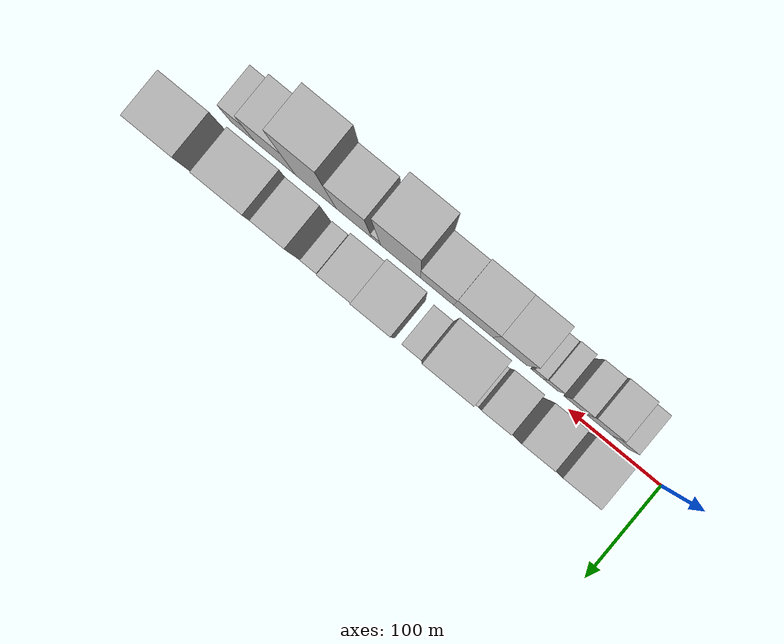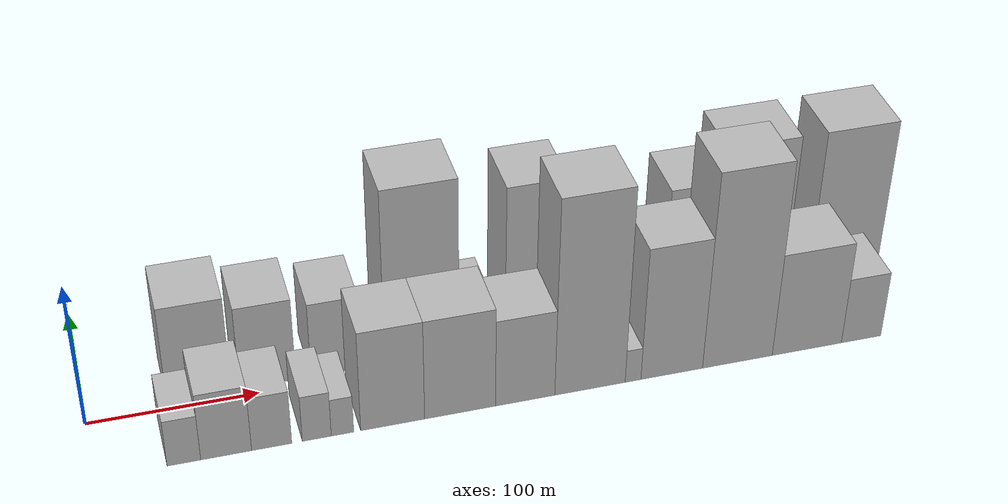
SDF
<sdf version="1.6">
 <world name="default">
  <scene>
   <sky><clouds><speed>12</speed></clouds></sky>
   <ambient>0.4 0.4 0.4 1</ambient>
   <background>0.7 0.7 0.7 1</background>
   <shadows>1</shadows>
  </scene>
  <gravity>0 0 -9.8066</gravity>
  <magnetic_field>6e-06 2.3e-05 -4.2e-05</magnetic_field>
  <physics default="0" name="default_physics" type="ode">
   <ode>
    <solver>
     <type>quick</type>
     <iters>10</iters>
     <sor>1.0</sor>
     <use_dynamic_moi_rescaling>0</use_dynamic_moi_rescaling>
    </solver>
    <constraints>
     <cfm>0</cfm>
     <erp>0.2</erp>
     <contact_max_correcting_vel>100</contact_max_correcting_vel>
     <contact_surface_layer>0.001</contact_surface_layer>
    </constraints>
   </ode>
   <max_step_size>0.004</max_step_size>
   <real_time_factor>1</real_time_factor>
   <real_time_update_rate>250</real_time_update_rate>
  </physics>
  <light name="sun" type="directional">
   <pose>0 0 10 0 0 0</pose>
   <diffuse>0.8 0.8 0.8 1</diffuse>
   <specular>0.2 0.2 0.2 1</specular>
   <attenuation>
    <range>1000</range>
    <constant>0.9</constant>
    <linear>0.01</linear>
    <quadratic>0.001</quadratic>
   </attenuation>
   <direction>-0.5 0.1 -0.9</direction>
  </light>
  <model name="building_1">
   <static>1</static>
   <pose>65.7065 26.0000 0 0.000000 0.000000 1.570796</pose>
   <link name="link">
    <pose>0 0 34.50 0 0 0</pose>
    <collision name="collision"><geometry><box><size>40.0000 37.4130 69.0000</size></box></geometry></collision>
    <visual name="visual">
     <cast_shadows>0</cast_shadows>
     <geometry><box><size>40.0000 37.4130 69.0000</size></box></geometry>
     <material>
      <script>
       <uri>model://HANNAS_wall/materials/scripts</uri>
       <uri>model://HANNAS_wall/materials/textures</uri>
       <name>vrc/HANNAS_wall</name>
      </script>
     </material>
    </visual>
   </link>
  </model>
  <model name="building_2">
   <static>1</static>
   <pose>105.9362 26.0000 0 0.000000 0.000000 1.570796</pose>
   <link name="link">
    <pose>0 0 30.00 0 0 0</pose>
    <collision name="collision"><geometry><box><size>40.0000 33.0465 60.0000</size></box></geometry></collision>
    <visual name="visual">
     <cast_shadows>0</cast_shadows>
     <geometry><box><size>40.0000 33.0465 60.0000</size></box></geometry>
     <material>
      <script>
       <uri>model://HANNAS_wall/materials/scripts</uri>
       <uri>model://HANNAS_wall/materials/textures</uri>
       <name>vrc/HANNAS_wall</name>
      </script>
     </material>
    </visual>
   </link>
  </model>
  <model name="building_3">
   <static>1</static>
   <pose>146.3972 26.0000 0 0.000000 0.000000 1.570796</pose>
   <link name="link">
    <pose>0 0 27.00 0 0 0</pose>
    <collision name="collision"><geometry><box><size>40.0000 29.8755 54.0000</size></box></geometry></collision>
    <visual name="visual">
     <cast_shadows>0</cast_shadows>
     <geometry><box><size>40.0000 29.8755 54.0000</size></box></geometry>
     <material>
      <script>
       <uri>model://HANNAS_wall/materials/scripts</uri>
       <uri>model://HANNAS_wall/materials/textures</uri>
       <name>vrc/HANNAS_wall</name>
      </script>
     </material>
    </visual>
   </link>
  </model>
  <model name="building_4">
   <static>1</static>
   <pose>166.8836 26.0000 0 0.000000 0.000000 1.570796</pose>
   <link name="link">
    <pose>0 0 12.00 0 0 0</pose>
    <collision name="collision"><geometry><box><size>40.0000 11.0972 24.0000</size></box></geometry></collision>
    <visual name="visual">
     <cast_shadows>0</cast_shadows>
     <geometry><box><size>40.0000 11.0972 24.0000</size></box></geometry>
     <material>
      <script>
       <uri>model://HANNAS_wall/materials/scripts</uri>
       <uri>model://HANNAS_wall/materials/textures</uri>
       <name>vrc/HANNAS_wall</name>
      </script>
     </material>
    </visual>
   </link>
  </model>
  <model name="building_5">
   <static>1</static>
   <pose>198.0467 26.0000 0 0.000000 0.000000 1.570796</pose>
   <link name="link">
    <pose>0 0 63.00 0 0 0</pose>
    <collision name="collision"><geometry><box><size>40.0000 45.2291 126.0000</size></box></geometry></collision>
    <visual name="visual">
     <cast_shadows>0</cast_shadows>
     <geometry><box><size>40.0000 45.2291 126.0000</size></box></geometry>
     <material>
      <script>
       <uri>model://HANNAS_wall/materials/scripts</uri>
       <uri>model://HANNAS_wall/materials/textures</uri>
       <name>vrc/HANNAS_wall</name>
      </script>
     </material>
    </visual>
   </link>
  </model>
  <model name="building_6">
   <static>1</static>
   <pose>230.7759 26.0000 0 0.000000 0.000000 1.570796</pose>
   <link name="link">
    <pose>0 0 18.00 0 0 0</pose>
    <collision name="collision"><geometry><box><size>40.0000 20.2292 36.0000</size></box></geometry></collision>
    <visual name="visual">
     <cast_shadows>0</cast_shadows>
     <geometry><box><size>40.0000 20.2292 36.0000</size></box></geometry>
     <material>
      <script>
       <uri>model://HANNAS_wall/materials/scripts</uri>
       <uri>model://HANNAS_wall/materials/textures</uri>
       <name>vrc/HANNAS_wall</name>
      </script>
     </material>
    </visual>
   </link>
  </model>
  <model name="building_7">
   <static>1</static>
   <pose>266.9222 26.0000 0 0.000000 0.000000 1.570796</pose>
   <link name="link">
    <pose>0 0 57.00 0 0 0</pose>
    <collision name="collision"><geometry><box><size>40.0000 36.0636 114.0000</size></box></geometry></collision>
    <visual name="visual">
     <cast_shadows>0</cast_shadows>
     <geometry><box><size>40.0000 36.0636 114.0000</size></box></geometry>
     <material>
      <script>
       <uri>model://HANNAS_wall/materials/scripts</uri>
       <uri>model://HANNAS_wall/materials/textures</uri>
       <name>vrc/HANNAS_wall</name>
      </script>
     </material>
    </visual>
   </link>
  </model>
  <model name="building_8">
   <static>1</static>
   <pose>303.3966 26.0000 0 0.000000 0.000000 1.570796</pose>
   <link name="link">
    <pose>0 0 36.00 0 0 0</pose>
    <collision name="collision"><geometry><box><size>40.0000 36.8851 72.0000</size></box></geometry></collision>
    <visual name="visual">
     <cast_shadows>0</cast_shadows>
     <geometry><box><size>40.0000 36.8851 72.0000</size></box></geometry>
     <material>
      <script>
       <uri>model://HANNAS_wall/materials/scripts</uri>
       <uri>model://HANNAS_wall/materials/textures</uri>
       <name>vrc/HANNAS_wall</name>
      </script>
     </material>
    </visual>
   </link>
  </model>
  <model name="building_9">
   <static>1</static>
   <pose>325.0866 26.0000 0 0.000000 0.000000 1.570796</pose>
   <link name="link">
    <pose>0 0 7.50 0 0 0</pose>
    <collision name="collision"><geometry><box><size>40.0000 6.4950 15.0000</size></box></geometry></collision>
    <visual name="visual">
     <cast_shadows>0</cast_shadows>
     <geometry><box><size>40.0000 6.4950 15.0000</size></box></geometry>
     <material>
      <script>
       <uri>model://HANNAS_wall/materials/scripts</uri>
       <uri>model://HANNAS_wall/materials/textures</uri>
       <name>vrc/HANNAS_wall</name>
      </script>
     </material>
    </visual>
   </link>
  </model>
  <model name="building_10">
   <static>1</static>
   <pose>336.6937 26.0000 0 0.000000 0.000000 1.570796</pose>
   <link name="link">
    <pose>0 0 16.50 0 0 0</pose>
    <collision name="collision"><geometry><box><size>40.0000 16.7191 33.0000</size></box></geometry></collision>
    <visual name="visual">
     <cast_shadows>0</cast_shadows>
     <geometry><box><size>40.0000 16.7191 33.0000</size></box></geometry>
     <material>
      <script>
       <uri>model://HANNAS_wall/materials/scripts</uri>
       <uri>model://HANNAS_wall/materials/textures</uri>
       <name>vrc/HANNAS_wall</name>
      </script>
     </material>
    </visual>
   </link>
  </model>
  <model name="building_11">
   <static>1</static>
   <pose>364.0488 26.0000 0 0.000000 0.000000 1.570796</pose>
   <link name="link">
    <pose>0 0 46.50 0 0 0</pose>
    <collision name="collision"><geometry><box><size>40.0000 31.9910 93.0000</size></box></geometry></collision>
    <visual name="visual">
     <cast_shadows>0</cast_shadows>
     <geometry><box><size>40.0000 31.9910 93.0000</size></box></geometry>
     <material>
      <script>
       <uri>model://HANNAS_wall/materials/scripts</uri>
       <uri>model://HANNAS_wall/materials/textures</uri>
       <name>vrc/HANNAS_wall</name>
      </script>
     </material>
    </visual>
   </link>
  </model>
  <model name="building_12">
   <static>1</static>
   <pose>403.1785 26.0000 0 0.000000 0.000000 1.570796</pose>
   <link name="link">
    <pose>0 0 58.50 0 0 0</pose>
    <collision name="collision"><geometry><box><size>40.0000 46.2685 117.0000</size></box></geometry></collision>
    <visual name="visual">
     <cast_shadows>0</cast_shadows>
     <geometry><box><size>40.0000 46.2685 117.0000</size></box></geometry>
     <material>
      <script>
       <uri>model://HANNAS_wall/materials/scripts</uri>
       <uri>model://HANNAS_wall/materials/textures</uri>
       <name>vrc/HANNAS_wall</name>
      </script>
     </material>
    </visual>
   </link>
  </model>
  <model name="building_13">
   <static>1</static>
   <pose>429.7338 26.0000 0 0.000000 0.000000 1.570796</pose>
   <link name="link">
    <pose>0 0 7.50 0 0 0</pose>
    <collision name="collision"><geometry><box><size>40.0000 6.8422 15.0000</size></box></geometry></collision>
    <visual name="visual">
     <cast_shadows>0</cast_shadows>
     <geometry><box><size>40.0000 6.8422 15.0000</size></box></geometry>
     <material>
      <script>
       <uri>model://HANNAS_wall/materials/scripts</uri>
       <uri>model://HANNAS_wall/materials/textures</uri>
       <name>vrc/HANNAS_wall</name>
      </script>
     </material>
    </visual>
   </link>
  </model>
  <model name="building_14">
   <static>1</static>
   <pose>464.8556 26.0000 0 0.000000 0.000000 1.570796</pose>
   <link name="link">
    <pose>0 0 58.50 0 0 0</pose>
    <collision name="collision"><geometry><box><size>40.0000 45.4014 117.0000</size></box></geometry></collision>
    <visual name="visual">
     <cast_shadows>0</cast_shadows>
     <geometry><box><size>40.0000 45.4014 117.0000</size></box></geometry>
     <material>
      <script>
       <uri>model://HANNAS_wall/materials/scripts</uri>
       <uri>model://HANNAS_wall/materials/textures</uri>
       <name>vrc/HANNAS_wall</name>
      </script>
     </material>
    </visual>
   </link>
  </model>
  <model name="building_15">
   <static>1</static>
   <pose>49.3920 -26.0000 0 0.000000 0.000000 1.570796</pose>
   <link name="link">
    <pose>0 0 16.50 0 0 0</pose>
    <collision name="collision"><geometry><box><size>40.0000 18.7839 33.0000</size></box></geometry></collision>
    <visual name="visual">
     <cast_shadows>0</cast_shadows>
     <geometry><box><size>40.0000 18.7839 33.0000</size></box></geometry>
     <material>
      <script>
       <uri>model://HANNAS_wall/materials/scripts</uri>
       <uri>model://HANNAS_wall/materials/textures</uri>
       <name>vrc/HANNAS_wall</name>
      </script>
     </material>
    </visual>
   </link>
  </model>
  <model name="building_16">
   <static>1</static>
   <pose>73.0712 -26.0000 0 0.000000 0.000000 1.570796</pose>
   <link name="link">
    <pose>0 0 24.00 0 0 0</pose>
    <collision name="collision"><geometry><box><size>40.0000 28.5745 48.0000</size></box></geometry></collision>
    <visual name="visual">
     <cast_shadows>0</cast_shadows>
     <geometry><box><size>40.0000 28.5745 48.0000</size></box></geometry>
     <material>
      <script>
       <uri>model://HANNAS_wall/materials/scripts</uri>
       <uri>model://HANNAS_wall/materials/textures</uri>
       <name>vrc/HANNAS_wall</name>
      </script>
     </material>
    </visual>
   </link>
  </model>
  <model name="building_17">
   <static>1</static>
   <pose>98.7270 -26.0000 0 0.000000 0.000000 1.570796</pose>
   <link name="link">
    <pose>0 0 19.50 0 0 0</pose>
    <collision name="collision"><geometry><box><size>40.0000 22.7371 39.0000</size></box></geometry></collision>
    <visual name="visual">
     <cast_shadows>0</cast_shadows>
     <geometry><box><size>40.0000 22.7371 39.0000</size></box></geometry>
     <material>
      <script>
       <uri>model://HANNAS_wall/materials/scripts</uri>
       <uri>model://HANNAS_wall/materials/textures</uri>
       <name>vrc/HANNAS_wall</name>
      </script>
     </material>
    </visual>
   </link>
  </model>
  <model name="building_18">
   <static>1</static>
   <pose>124.3681 -26.0000 0 0.000000 0.000000 1.570796</pose>
   <link name="link">
    <pose>0 0 16.50 0 0 0</pose>
    <collision name="collision"><geometry><box><size>40.0000 16.5450 33.0000</size></box></geometry></collision>
    <visual name="visual">
     <cast_shadows>0</cast_shadows>
     <geometry><box><size>40.0000 16.5450 33.0000</size></box></geometry>
     <material>
      <script>
       <uri>model://HANNAS_wall/materials/scripts</uri>
       <uri>model://HANNAS_wall/materials/textures</uri>
       <name>vrc/HANNAS_wall</name>
      </script>
     </material>
    </visual>
   </link>
  </model>
  <model name="building_19">
   <static>1</static>
   <pose>139.1101 -26.0000 0 0.000000 0.000000 1.570796</pose>
   <link name="link">
    <pose>0 0 13.50 0 0 0</pose>
    <collision name="collision"><geometry><box><size>40.0000 12.9389 27.0000</size></box></geometry></collision>
    <visual name="visual">
     <cast_shadows>0</cast_shadows>
     <geometry><box><size>40.0000 12.9389 27.0000</size></box></geometry>
     <material>
      <script>
       <uri>model://HANNAS_wall/materials/scripts</uri>
       <uri>model://HANNAS_wall/materials/textures</uri>
       <name>vrc/HANNAS_wall</name>
      </script>
     </material>
    </visual>
   </link>
  </model>
  <model name="building_20">
   <static>1</static>
   <pose>168.1830 -26.0000 0 0.000000 0.000000 1.570796</pose>
   <link name="link">
    <pose>0 0 36.00 0 0 0</pose>
    <collision name="collision"><geometry><box><size>40.0000 37.2070 72.0000</size></box></geometry></collision>
    <visual name="visual">
     <cast_shadows>0</cast_shadows>
     <geometry><box><size>40.0000 37.2070 72.0000</size></box></geometry>
     <material>
      <script>
       <uri>model://HANNAS_wall/materials/scripts</uri>
       <uri>model://HANNAS_wall/materials/textures</uri>
       <name>vrc/HANNAS_wall</name>
      </script>
     </material>
    </visual>
   </link>
  </model>
  <model name="building_21">
   <static>1</static>
   <pose>207.6765 -26.0000 0 0.000000 0.000000 1.570796</pose>
   <link name="link">
    <pose>0 0 36.00 0 0 0</pose>
    <collision name="collision"><geometry><box><size>40.0000 41.7799 72.0000</size></box></geometry></collision>
    <visual name="visual">
     <cast_shadows>0</cast_shadows>
     <geometry><box><size>40.0000 41.7799 72.0000</size></box></geometry>
     <material>
      <script>
       <uri>model://HANNAS_wall/materials/scripts</uri>
       <uri>model://HANNAS_wall/materials/textures</uri>
       <name>vrc/HANNAS_wall</name>
      </script>
     </material>
    </visual>
   </link>
  </model>
  <model name="building_22">
   <static>1</static>
   <pose>246.3344 -26.0000 0 0.000000 0.000000 1.570796</pose>
   <link name="link">
    <pose>0 0 31.50 0 0 0</pose>
    <collision name="collision"><geometry><box><size>40.0000 35.5359 63.0000</size></box></geometry></collision>
    <visual name="visual">
     <cast_shadows>0</cast_shadows>
     <geometry><box><size>40.0000 35.5359 63.0000</size></box></geometry>
     <material>
      <script>
       <uri>model://HANNAS_wall/materials/scripts</uri>
       <uri>model://HANNAS_wall/materials/textures</uri>
       <name>vrc/HANNAS_wall</name>
      </script>
     </material>
    </visual>
   </link>
  </model>
  <model name="building_23">
   <static>1</static>
   <pose>285.4717 -26.0000 0 0.000000 0.000000 1.570796</pose>
   <link name="link">
    <pose>0 0 70.50 0 0 0</pose>
    <collision name="collision"><geometry><box><size>40.0000 42.7387 141.0000</size></box></geometry></collision>
    <visual name="visual">
     <cast_shadows>0</cast_shadows>
     <geometry><box><size>40.0000 42.7387 141.0000</size></box></geometry>
     <material>
      <script>
       <uri>model://HANNAS_wall/materials/scripts</uri>
       <uri>model://HANNAS_wall/materials/textures</uri>
       <name>vrc/HANNAS_wall</name>
      </script>
     </material>
    </visual>
   </link>
  </model>
  <model name="building_24">
   <static>1</static>
   <pose>311.6686 -26.0000 0 0.000000 0.000000 1.570796</pose>
   <link name="link">
    <pose>0 0 12.00 0 0 0</pose>
    <collision name="collision"><geometry><box><size>40.0000 9.6551 24.0000</size></box></geometry></collision>
    <visual name="visual">
     <cast_shadows>0</cast_shadows>
     <geometry><box><size>40.0000 9.6551 24.0000</size></box></geometry>
     <material>
      <script>
       <uri>model://HANNAS_wall/materials/scripts</uri>
       <uri>model://HANNAS_wall/materials/textures</uri>
       <name>vrc/HANNAS_wall</name>
      </script>
     </material>
    </visual>
   </link>
  </model>
  <model name="building_25">
   <static>1</static>
   <pose>335.5545 -26.0000 0 0.000000 0.000000 1.570796</pose>
   <link name="link">
    <pose>0 0 48.00 0 0 0</pose>
    <collision name="collision"><geometry><box><size>40.0000 38.1167 96.0000</size></box></geometry></collision>
    <visual name="visual">
     <cast_shadows>0</cast_shadows>
     <geometry><box><size>40.0000 38.1167 96.0000</size></box></geometry>
     <material>
      <script>
       <uri>model://HANNAS_wall/materials/scripts</uri>
       <uri>model://HANNAS_wall/materials/textures</uri>
       <name>vrc/HANNAS_wall</name>
      </script>
     </material>
    </visual>
   </link>
  </model>
  <model name="building_26">
   <static>1</static>
   <pose>376.4660 -26.0000 0 0.000000 0.000000 1.570796</pose>
   <link name="link">
    <pose>0 0 70.50 0 0 0</pose>
    <collision name="collision"><geometry><box><size>40.0000 43.7062 141.0000</size></box></geometry></collision>
    <visual name="visual">
     <cast_shadows>0</cast_shadows>
     <geometry><box><size>40.0000 43.7062 141.0000</size></box></geometry>
     <material>
      <script>
       <uri>model://HANNAS_wall/materials/scripts</uri>
       <uri>model://HANNAS_wall/materials/textures</uri>
       <name>vrc/HANNAS_wall</name>
      </script>
     </material>
    </visual>
   </link>
  </model>
  <model name="building_27">
   <static>1</static>
   <pose>420.3613 -26.0000 0 0.000000 0.000000 1.570796</pose>
   <link name="link">
    <pose>0 0 37.50 0 0 0</pose>
    <collision name="collision"><geometry><box><size>40.0000 44.0845 75.0000</size></box></geometry></collision>
    <visual name="visual">
     <cast_shadows>0</cast_shadows>
     <geometry><box><size>40.0000 44.0845 75.0000</size></box></geometry>
     <material>
      <script>
       <uri>model://HANNAS_wall/materials/scripts</uri>
       <uri>model://HANNAS_wall/materials/textures</uri>
       <name>vrc/HANNAS_wall</name>
      </script>
     </material>
    </visual>
   </link>
  </model>
  <model name="building_28">
   <static>1</static>
   <pose>455.1035 -26.0000 0 0.000000 0.000000 1.570796</pose>
   <link name="link">
    <pose>0 0 24.00 0 0 0</pose>
    <collision name="collision"><geometry><box><size>40.0000 25.3998 48.0000</size></box></geometry></collision>
    <visual name="visual">
     <cast_shadows>0</cast_shadows>
     <geometry><box><size>40.0000 25.3998 48.0000</size></box></geometry>
     <material>
      <script>
       <uri>model://HANNAS_wall/materials/scripts</uri>
       <uri>model://HANNAS_wall/materials/textures</uri>
       <name>vrc/HANNAS_wall</name>
      </script>
     </material>
    </visual>
   </link>
  </model>
 </world>
</sdf>
